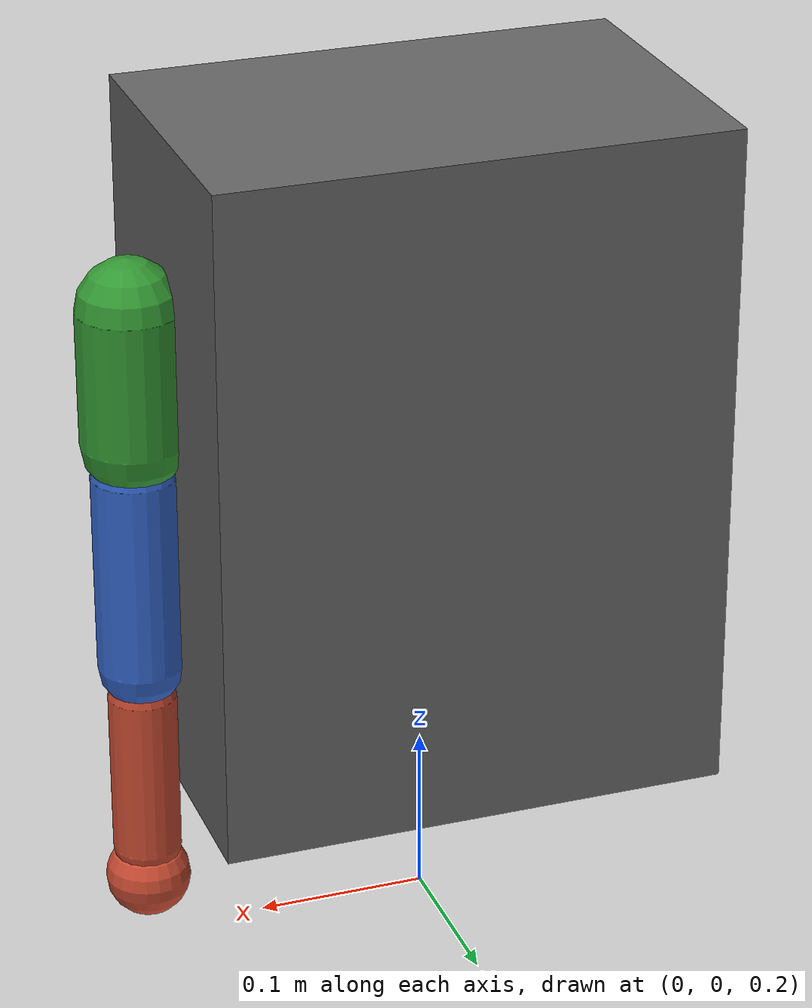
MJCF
<mujoco model="left_arm">
  <option timestep="0.002" gravity="0 0 -9.81" integrator="RK4"/>

  <asset>
    <material name="base_mat" rgba="0.4 0.4 0.4 1"/>
    <material name="shoulder_mat" rgba="0.2 0.6 0.2 1"/>
    <material name="upper_arm_mat" rgba="0.2 0.4 0.8 1"/>
    <material name="forearm_mat" rgba="0.8 0.3 0.2 1"/>
  </asset>

  <worldbody>
    <!-- Fixed torso base -->
    <body name="torso" pos="0 0 0.5">
      <inertial pos="0 0 0" mass="100" diaginertia="1 1 1"/>
      <geom name="torso_geom" type="box" size="0.15 0.1 0.2" material="base_mat"/>

      <!-- Servo 12: Shoulder pitch (forward/backward, Y-axis) -->
      <body name="shoulder" pos="0.17 0 0.1">
        <joint name="shoulder_pitch" type="hinge" axis="0 1 0" damping="0.5" armature="0.02"
               range="-90 90"/>
        <inertial pos="0 0 -0.05" mass="0.3" diaginertia="0.001 0.001 0.0005"/>
        <geom name="shoulder_geom" type="capsule" size="0.03" fromto="0 0 0 0 0 -0.08"
              material="shoulder_mat"/>

        <!-- Servo 13: Shoulder roll (inward/outward, X-axis) -->
        <body name="upper_arm" pos="0 0 -0.1">
          <joint name="shoulder_roll" type="hinge" axis="1 0 0" damping="0.5" armature="0.02"
                 range="-90 90"/>
          <inertial pos="0 0 -0.06" mass="0.25" diaginertia="0.0008 0.0008 0.0003"/>
          <geom name="upper_arm_geom" type="capsule" size="0.025" fromto="0 0 0 0 0 -0.12"
                material="upper_arm_mat"/>

          <!-- Servo 14: Forearm roll (inward/outward, X-axis) -->
          <body name="forearm" pos="0 0 -0.14">
            <joint name="forearm_roll" type="hinge" axis="1 0 0" damping="0.5" armature="0.02"
                   range="-90 90"/>
            <inertial pos="0 0 -0.05" mass="0.15" diaginertia="0.0004 0.0004 0.0002"/>
            <geom name="forearm_geom" type="capsule" size="0.02" fromto="0 0 0 0 0 -0.1"
                  material="forearm_mat"/>
            <!-- Hand/gripper placeholder -->
            <geom name="hand_geom" type="sphere" size="0.025" pos="0 0 -0.12"
                  material="forearm_mat" mass="0.05"/>
          </body>
        </body>
      </body>
    </body>
  </worldbody>

  <actuator>
    <!-- Position-controlled servos -->
    <position name="servo_12" joint="shoulder_pitch" kp="100"/>
    <position name="servo_13" joint="shoulder_roll" kp="100"/>
    <position name="servo_14" joint="forearm_roll" kp="100"/>
  </actuator>
</mujoco>
